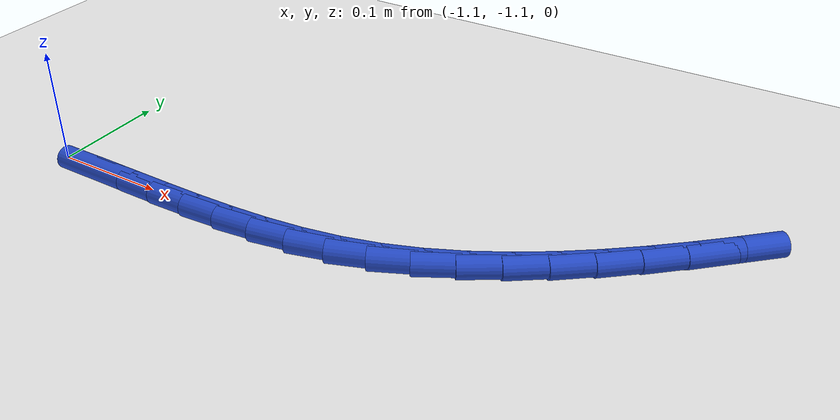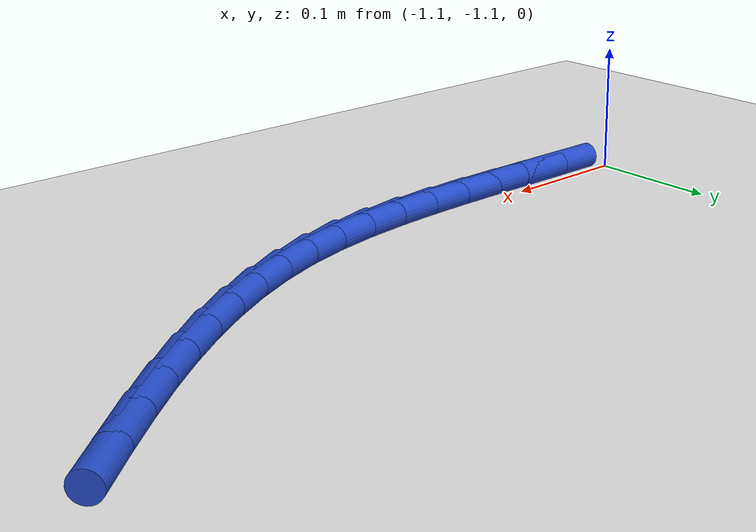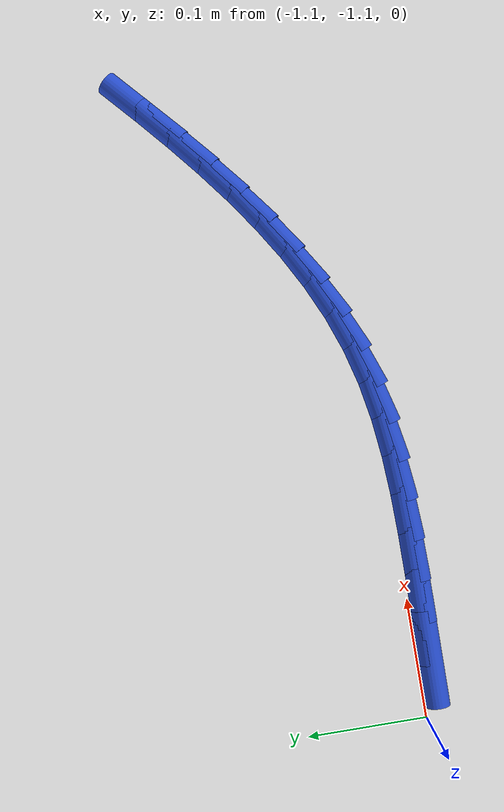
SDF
<sdf version="1.6">
 <world name="default">
  <model name="ground_plane">
   <static>1</static>
   <link name="link">
    <collision name="collision">
     <geometry><plane><normal>0 0 1</normal><size>100 100</size></plane></geometry>
     <surface><friction><ode><mu>100</mu><mu2>50</mu2></ode></friction></surface>
    </collision>
    <visual name="visual">
     <cast_shadows>0</cast_shadows>
     <geometry><plane><normal>0 0 1</normal><size>100 100</size></plane></geometry>
     <material>
      <script><uri>file://media/materials/scripts/gazebo.material</uri><name>Gazebo/WhiteGlow</name></script>
     </material>
    </visual>
   </link>
  </model>
  <model name="line">
   <link name="link_150">
    <pose>-1.048645506696363 -1.1103238442335108 0.01 0 1.57 -0.006176636034538744</pose>
    <collision name="collision">
     <geometry><cylinder><radius>0.01</radius><length>0.08</length></cylinder></geometry>
    </collision>
    <visual name="visual">
     <material>
      <script><name>Gazebo/Blue</name><uri>file://media/materials/scripts/gazebo.material</uri></script>
     </material>
     <geometry><cylinder><radius>0.01</radius><length>0.08</length></cylinder></geometry>
    </visual>
   </link>
   <link name="link_151">
    <pose>-1.0134823839131895 -1.1105410368068132 0.01 0 1.57 -0.009898161952472348</pose>
    <collision name="collision">
     <geometry><cylinder><radius>0.01</radius><length>0.08</length></cylinder></geometry>
    </collision>
    <visual name="visual">
     <material>
      <script><name>Gazebo/Blue</name><uri>file://media/materials/scripts/gazebo.material</uri></script>
     </material>
     <geometry><cylinder><radius>0.01</radius><length>0.08</length></cylinder></geometry>
    </visual>
   </link>
   <link name="link_152">
    <pose>-0.9787441829711578 -1.1108848923753387 0.01 0 1.57 -0.0008334427585110152</pose>
    <collision name="collision">
     <geometry><cylinder><radius>0.01</radius><length>0.08</length></cylinder></geometry>
    </collision>
    <visual name="visual">
     <material>
      <script><name>Gazebo/Blue</name><uri>file://media/materials/scripts/gazebo.material</uri></script>
     </material>
     <geometry><cylinder><radius>0.01</radius><length>0.08</length></cylinder></geometry>
    </visual>
   </link>
   <link name="link_153">
    <pose>-0.9444963264743969 -1.1109134360099395 0.01 0 1.57 0.02162613326538464</pose>
    <collision name="collision">
     <geometry><cylinder><radius>0.01</radius><length>0.08</length></cylinder></geometry>
    </collision>
    <visual name="visual">
     <material>
      <script><name>Gazebo/Blue</name><uri>file://media/materials/scripts/gazebo.material</uri></script>
     </material>
     <geometry><cylinder><radius>0.01</radius><length>0.08</length></cylinder></geometry>
    </visual>
   </link>
   <link name="link_154">
    <pose>-0.9108042370270341 -1.1101846927814665 0.01 0 1.57 0.058233225637350866</pose>
    <collision name="collision">
     <geometry><cylinder><radius>0.01</radius><length>0.08</length></cylinder></geometry>
    </collision>
    <visual name="visual">
     <material>
      <script><name>Gazebo/Blue</name><uri>file://media/materials/scripts/gazebo.material</uri></script>
     </material>
     <geometry><cylinder><radius>0.01</radius><length>0.08</length></cylinder></geometry>
    </visual>
   </link>
   <link name="link_155">
    <pose>-0.8777333372331976 -1.1082566877607716 0.01 0 1.57 0.10977217995658953</pose>
    <collision name="collision">
     <geometry><cylinder><radius>0.01</radius><length>0.08</length></cylinder></geometry>
    </collision>
    <visual name="visual">
     <material>
      <script><name>Gazebo/Blue</name><uri>file://media/materials/scripts/gazebo.material</uri></script>
     </material>
     <geometry><cylinder><radius>0.01</radius><length>0.08</length></cylinder></geometry>
    </visual>
   </link>
   <link name="link_156">
    <pose>-0.845349049697015 -1.1046874460187064 0.01 0 1.57 0.17682640059272214</pose>
    <collision name="collision">
     <geometry><cylinder><radius>0.01</radius><length>0.08</length></cylinder></geometry>
    </collision>
    <visual name="visual">
     <material>
      <script><name>Gazebo/Blue</name><uri>file://media/materials/scripts/gazebo.material</uri></script>
     </material>
     <geometry><cylinder><radius>0.01</radius><length>0.08</length></cylinder></geometry>
    </visual>
   </link>
   <link name="link_157">
    <pose>-0.8137167970226145 -1.0990349926261223 0.01 0 1.57 0.25928814687079516</pose>
    <collision name="collision">
     <geometry><cylinder><radius>0.01</radius><length>0.08</length></cylinder></geometry>
    </collision>
    <visual name="visual">
     <material>
      <script><name>Gazebo/Blue</name><uri>file://media/materials/scripts/gazebo.material</uri></script>
     </material>
     <geometry><cylinder><radius>0.01</radius><length>0.08</length></cylinder></geometry>
    </visual>
   </link>
   <link name="link_158">
    <pose>-0.7829013167032108 -1.0908608950572694 0.01 0 1.57 0.34820941672683403</pose>
    <collision name="collision">
     <geometry><cylinder><radius>0.01</radius><length>0.08</length></cylinder></geometry>
    </collision>
    <visual name="visual">
     <material>
      <script><name>Gazebo/Blue</name><uri>file://media/materials/scripts/gazebo.material</uri></script>
     </material>
     <geometry><cylinder><radius>0.01</radius><length>0.08</length></cylinder></geometry>
    </visual>
   </link>
   <link name="link_159">
    <pose>-0.752918892099716 -1.0799772555241187 0.01 0 1.57 0.42919618389572206</pose>
    <collision name="collision">
     <geometry><cylinder><radius>0.01</radius><length>0.08</length></cylinder></geometry>
    </collision>
    <visual name="visual">
     <material>
      <script><name>Gazebo/Blue</name><uri>file://media/materials/scripts/gazebo.material</uri></script>
     </material>
     <geometry><cylinder><radius>0.01</radius><length>0.08</length></cylinder></geometry>
    </visual>
   </link>
   <link name="link_160">
    <pose>-0.7237061423377532 -1.066608084518596 0.01 0 1.57 0.5004092024715795</pose>
    <collision name="collision">
     <geometry><cylinder><radius>0.01</radius><length>0.08</length></cylinder></geometry>
    </collision>
    <visual name="visual">
     <material>
      <script><name>Gazebo/Blue</name><uri>file://media/materials/scripts/gazebo.material</uri></script>
     </material>
     <geometry><cylinder><radius>0.01</radius><length>0.08</length></cylinder></geometry>
    </visual>
   </link>
   <link name="link_161">
    <pose>-0.6951922715216723 -1.051015732305145 0.01 0 1.57 0.5618050927356668</pose>
    <collision name="collision">
     <geometry><cylinder><radius>0.01</radius><length>0.08</length></cylinder></geometry>
    </collision>
    <visual name="visual">
     <material>
      <script><name>Gazebo/Blue</name><uri>file://media/materials/scripts/gazebo.material</uri></script>
     </material>
     <geometry><cylinder><radius>0.01</radius><length>0.08</length></cylinder></geometry>
    </visual>
   </link>
   <link name="link_162">
    <pose>-0.6673064837558228 -1.0334625491482092 0.01 0 1.57 0.6137087862365296</pose>
    <collision name="collision">
     <geometry><cylinder><radius>0.01</radius><length>0.08</length></cylinder></geometry>
    </collision>
    <visual name="visual">
     <material>
      <script><name>Gazebo/Blue</name><uri>file://media/materials/scripts/gazebo.material</uri></script>
     </material>
     <geometry><cylinder><radius>0.01</radius><length>0.08</length></cylinder></geometry>
    </visual>
   </link>
   <link name="link_163">
    <pose>-0.6399779831445546 -1.0142108853122318 0.01 0 1.57 0.6566333898523445</pose>
    <collision name="collision">
     <geometry><cylinder><radius>0.01</radius><length>0.08</length></cylinder></geometry>
    </collision>
    <visual name="visual">
     <material>
      <script><name>Gazebo/Blue</name><uri>file://media/materials/scripts/gazebo.material</uri></script>
     </material>
     <geometry><cylinder><radius>0.01</radius><length>0.08</length></cylinder></geometry>
    </visual>
   </link>
   <link name="link_164">
    <pose>-0.6131359737922173 -0.9935230910616568 0.01 0 1.57 0.6911464792531934</pose>
    <collision name="collision">
     <geometry><cylinder><radius>0.01</radius><length>0.08</length></cylinder></geometry>
    </collision>
    <visual name="visual">
     <material>
      <script><name>Gazebo/Blue</name><uri>file://media/materials/scripts/gazebo.material</uri></script>
     </material>
     <geometry><cylinder><radius>0.01</radius><length>0.08</length></cylinder></geometry>
    </visual>
   </link>
   <link name="link_165">
    <pose>-0.5867096598031606 -0.9716615166609273 0.01 0 1.57 0.7177816250157966</pose>
    <collision name="collision">
     <geometry><cylinder><radius>0.01</radius><length>0.08</length></cylinder></geometry>
    </collision>
    <visual name="visual">
     <material>
      <script><name>Gazebo/Blue</name><uri>file://media/materials/scripts/gazebo.material</uri></script>
     </material>
     <geometry><cylinder><radius>0.01</radius><length>0.08</length></cylinder></geometry>
    </visual>
   </link>
   <link name="link_166">
    <pose>-0.5606282452817343 -0.9488885123744868 0.01 0 1.57 0.7369847467349824</pose>
    <collision name="collision">
     <geometry><cylinder><radius>0.01</radius><length>0.08</length></cylinder></geometry>
    </collision>
    <visual name="visual">
     <material>
      <script><name>Gazebo/Blue</name><uri>file://media/materials/scripts/gazebo.material</uri></script>
     </material>
     <geometry><cylinder><radius>0.01</radius><length>0.08</length></cylinder></geometry>
    </visual>
   </link>
  </model>
 </world>
</sdf>
